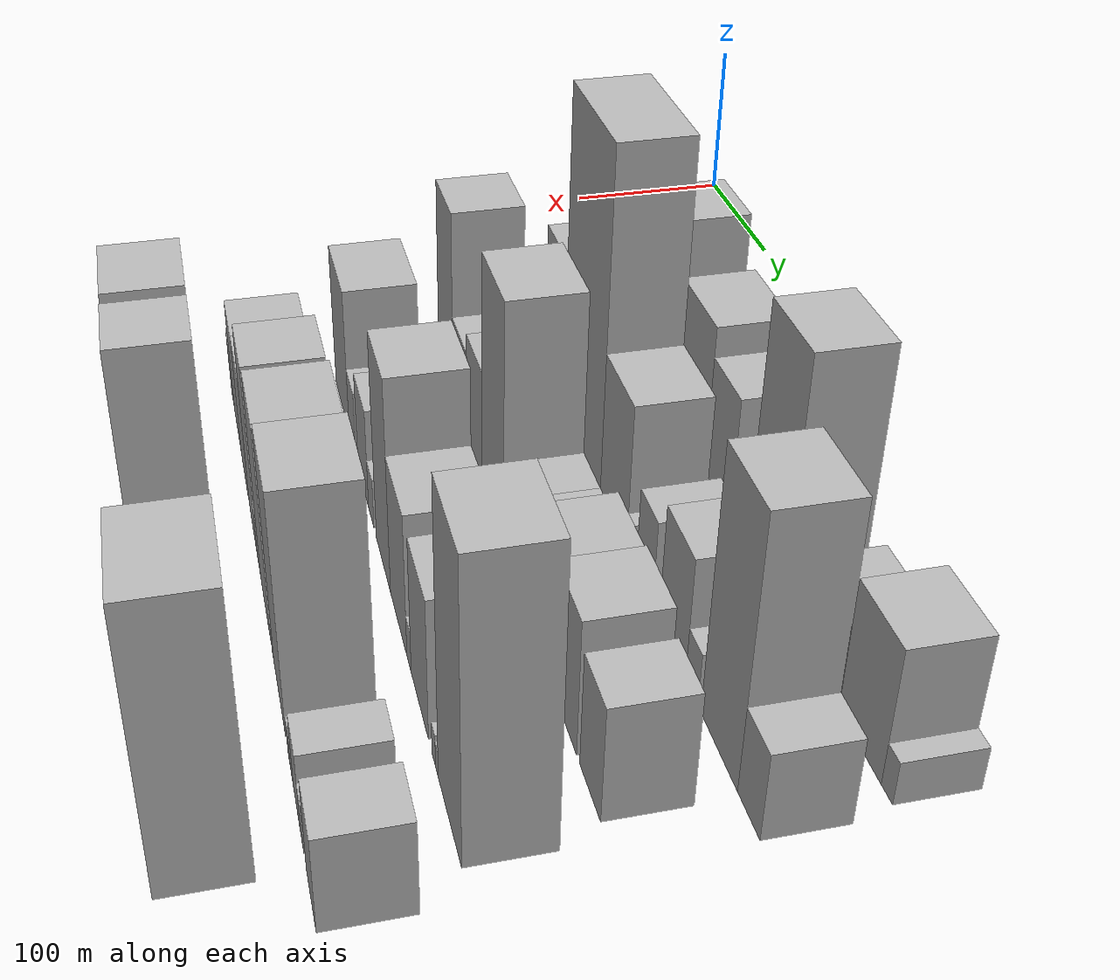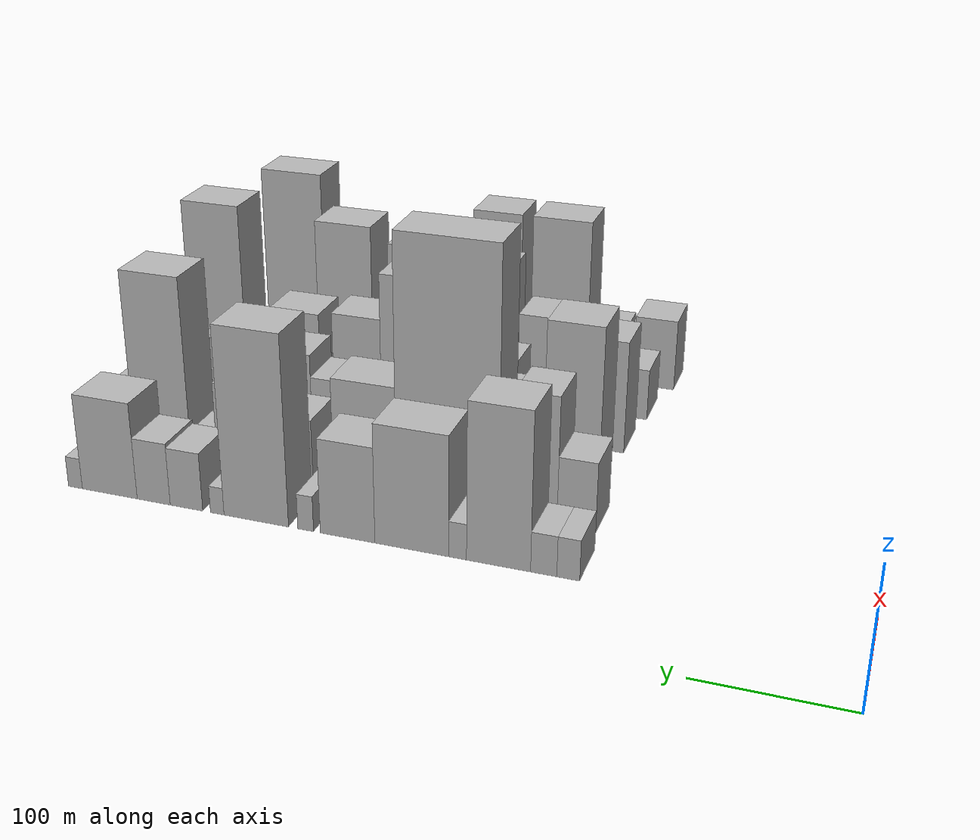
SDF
<sdf version="1.6">
 <world name="default">
  <model name="building_38">
   <static>1</static>
   <pose>100.0000 192.2269 0 0.000000 0.000000 0.000000</pose>
   <link name="link">
    <pose>0 0 15.00 0 0 0</pose>
    <collision name="collision"><geometry><box><size>40.0000 15.2988 30.0000</size></box></geometry></collision>
    <visual name="visual">
     <cast_shadows>0</cast_shadows>
     <geometry><box><size>40.0000 15.2988 30.0000</size></box></geometry>
     <material>
      <script>
       <uri>model://HANNAS_wall/materials/scripts</uri>
       <uri>model://HANNAS_wall/materials/textures</uri>
       <name>vrc/HANNAS_wall</name>
      </script>
     </material>
    </visual>
   </link>
  </model>
  <model name="building_39">
   <static>1</static>
   <pose>100.0000 208.6810 0 0.000000 0.000000 0.000000</pose>
   <link name="link">
    <pose>0 0 15.00 0 0 0</pose>
    <collision name="collision"><geometry><box><size>40.0000 17.6095 30.0000</size></box></geometry></collision>
    <visual name="visual">
     <cast_shadows>0</cast_shadows>
     <geometry><box><size>40.0000 17.6095 30.0000</size></box></geometry>
     <material>
      <script>
       <uri>model://HANNAS_wall/materials/scripts</uri>
       <uri>model://HANNAS_wall/materials/textures</uri>
       <name>vrc/HANNAS_wall</name>
      </script>
     </material>
    </visual>
   </link>
  </model>
  <model name="building_40">
   <static>1</static>
   <pose>100.0000 239.4291 0 0.000000 0.000000 0.000000</pose>
   <link name="link">
    <pose>0 0 58.50 0 0 0</pose>
    <collision name="collision"><geometry><box><size>40.0000 43.8867 117.0000</size></box></geometry></collision>
    <visual name="visual">
     <cast_shadows>0</cast_shadows>
     <geometry><box><size>40.0000 43.8867 117.0000</size></box></geometry>
     <material>
      <script>
       <uri>model://HANNAS_wall/materials/scripts</uri>
       <uri>model://HANNAS_wall/materials/textures</uri>
       <name>vrc/HANNAS_wall</name>
      </script>
     </material>
    </visual>
   </link>
  </model>
  <model name="building_41">
   <static>1</static>
   <pose>100.0000 267.4837 0 0.000000 0.000000 0.000000</pose>
   <link name="link">
    <pose>0 0 13.50 0 0 0</pose>
    <collision name="collision"><geometry><box><size>40.0000 12.2225 27.0000</size></box></geometry></collision>
    <visual name="visual">
     <cast_shadows>0</cast_shadows>
     <geometry><box><size>40.0000 12.2225 27.0000</size></box></geometry>
     <material>
      <script>
       <uri>model://HANNAS_wall/materials/scripts</uri>
       <uri>model://HANNAS_wall/materials/textures</uri>
       <name>vrc/HANNAS_wall</name>
      </script>
     </material>
    </visual>
   </link>
  </model>
  <model name="building_42">
   <static>1</static>
   <pose>100.0000 299.8959 0 0.000000 0.000000 0.000000</pose>
   <link name="link">
    <pose>0 0 45.00 0 0 0</pose>
    <collision name="collision"><geometry><box><size>40.0000 52.6018 90.0000</size></box></geometry></collision>
    <visual name="visual">
     <cast_shadows>0</cast_shadows>
     <geometry><box><size>40.0000 52.6018 90.0000</size></box></geometry>
     <material>
      <script>
       <uri>model://HANNAS_wall/materials/scripts</uri>
       <uri>model://HANNAS_wall/materials/textures</uri>
       <name>vrc/HANNAS_wall</name>
      </script>
     </material>
    </visual>
   </link>
  </model>
  <model name="building_43">
   <static>1</static>
   <pose>100.0000 346.1152 0 0.000000 0.000000 0.000000</pose>
   <link name="link">
    <pose>0 0 36.00 0 0 0</pose>
    <collision name="collision"><geometry><box><size>40.0000 39.8369 72.0000</size></box></geometry></collision>
    <visual name="visual">
     <cast_shadows>0</cast_shadows>
     <geometry><box><size>40.0000 39.8369 72.0000</size></box></geometry>
     <material>
      <script>
       <uri>model://HANNAS_wall/materials/scripts</uri>
       <uri>model://HANNAS_wall/materials/textures</uri>
       <name>vrc/HANNAS_wall</name>
      </script>
     </material>
    </visual>
   </link>
  </model>
  <model name="building_44">
   <static>1</static>
   <pose>100.0000 376.8552 0 0.000000 0.000000 0.000000</pose>
   <link name="link">
    <pose>0 0 13.50 0 0 0</pose>
    <collision name="collision"><geometry><box><size>40.0000 11.6431 27.0000</size></box></geometry></collision>
    <visual name="visual">
     <cast_shadows>0</cast_shadows>
     <geometry><box><size>40.0000 11.6431 27.0000</size></box></geometry>
     <material>
      <script>
       <uri>model://HANNAS_wall/materials/scripts</uri>
       <uri>model://HANNAS_wall/materials/textures</uri>
       <name>vrc/HANNAS_wall</name>
      </script>
     </material>
    </visual>
   </link>
  </model>
  <model name="building_45">
   <static>1</static>
   <pose>100.0000 414.1747 0 0.000000 0.000000 0.000000</pose>
   <link name="link">
    <pose>0 0 72.00 0 0 0</pose>
    <collision name="collision"><geometry><box><size>40.0000 48.9959 144.0000</size></box></geometry></collision>
    <visual name="visual">
     <cast_shadows>0</cast_shadows>
     <geometry><box><size>40.0000 48.9959 144.0000</size></box></geometry>
     <material>
      <script>
       <uri>model://HANNAS_wall/materials/scripts</uri>
       <uri>model://HANNAS_wall/materials/textures</uri>
       <name>vrc/HANNAS_wall</name>
      </script>
     </material>
    </visual>
   </link>
  </model>
  <model name="building_46">
   <static>1</static>
   <pose>100.0000 443.8975 0 0.000000 0.000000 0.000000</pose>
   <link name="link">
    <pose>0 0 10.50 0 0 0</pose>
    <collision name="collision"><geometry><box><size>40.0000 10.4497 21.0000</size></box></geometry></collision>
    <visual name="visual">
     <cast_shadows>0</cast_shadows>
     <geometry><box><size>40.0000 10.4497 21.0000</size></box></geometry>
     <material>
      <script>
       <uri>model://HANNAS_wall/materials/scripts</uri>
       <uri>model://HANNAS_wall/materials/textures</uri>
       <name>vrc/HANNAS_wall</name>
      </script>
     </material>
    </visual>
   </link>
  </model>
  <model name="building_47">
   <static>1</static>
   <pose>100.0000 467.8618 0 0.000000 0.000000 0.000000</pose>
   <link name="link">
    <pose>0 0 22.50 0 0 0</pose>
    <collision name="collision"><geometry><box><size>40.0000 25.4788 45.0000</size></box></geometry></collision>
    <visual name="visual">
     <cast_shadows>0</cast_shadows>
     <geometry><box><size>40.0000 25.4788 45.0000</size></box></geometry>
     <material>
      <script>
       <uri>model://HANNAS_wall/materials/scripts</uri>
       <uri>model://HANNAS_wall/materials/textures</uri>
       <name>vrc/HANNAS_wall</name>
      </script>
     </material>
    </visual>
   </link>
  </model>
  <model name="building_48">
   <static>1</static>
   <pose>100.0000 493.7250 0 0.000000 0.000000 0.000000</pose>
   <link name="link">
    <pose>0 0 24.00 0 0 0</pose>
    <collision name="collision"><geometry><box><size>40.0000 26.2477 48.0000</size></box></geometry></collision>
    <visual name="visual">
     <cast_shadows>0</cast_shadows>
     <geometry><box><size>40.0000 26.2477 48.0000</size></box></geometry>
     <material>
      <script>
       <uri>model://HANNAS_wall/materials/scripts</uri>
       <uri>model://HANNAS_wall/materials/textures</uri>
       <name>vrc/HANNAS_wall</name>
      </script>
     </material>
    </visual>
   </link>
  </model>
  <model name="building_49">
   <static>1</static>
   <pose>100.0000 529.0717 0 0.000000 0.000000 0.000000</pose>
   <link name="link">
    <pose>0 0 37.50 0 0 0</pose>
    <collision name="collision"><geometry><box><size>40.0000 44.4456 75.0000</size></box></geometry></collision>
    <visual name="visual">
     <cast_shadows>0</cast_shadows>
     <geometry><box><size>40.0000 44.4456 75.0000</size></box></geometry>
     <material>
      <script>
       <uri>model://HANNAS_wall/materials/scripts</uri>
       <uri>model://HANNAS_wall/materials/textures</uri>
       <name>vrc/HANNAS_wall</name>
      </script>
     </material>
    </visual>
   </link>
  </model>
  <model name="building_50">
   <static>1</static>
   <pose>100.0000 556.9595 0 0.000000 0.000000 0.000000</pose>
   <link name="link">
    <pose>0 0 12.00 0 0 0</pose>
    <collision name="collision"><geometry><box><size>40.0000 11.3300 24.0000</size></box></geometry></collision>
    <visual name="visual">
     <cast_shadows>0</cast_shadows>
     <geometry><box><size>40.0000 11.3300 24.0000</size></box></geometry>
     <material>
      <script>
       <uri>model://HANNAS_wall/materials/scripts</uri>
       <uri>model://HANNAS_wall/materials/textures</uri>
       <name>vrc/HANNAS_wall</name>
      </script>
     </material>
    </visual>
   </link>
  </model>
  <model name="building_98">
   <static>1</static>
   <pose>160.0000 202.7321 0 0.000000 0.000000 0.000000</pose>
   <link name="link">
    <pose>0 0 27.00 0 0 0</pose>
    <collision name="collision"><geometry><box><size>40.0000 27.2158 54.0000</size></box></geometry></collision>
    <visual name="visual">
     <cast_shadows>0</cast_shadows>
     <geometry><box><size>40.0000 27.2158 54.0000</size></box></geometry>
     <material>
      <script>
       <uri>model://HANNAS_wall/materials/scripts</uri>
       <uri>model://HANNAS_wall/materials/textures</uri>
       <name>vrc/HANNAS_wall</name>
      </script>
     </material>
    </visual>
   </link>
  </model>
  <model name="building_99">
   <static>1</static>
   <pose>160.0000 232.1119 0 0.000000 0.000000 0.000000</pose>
   <link name="link">
    <pose>0 0 49.50 0 0 0</pose>
    <collision name="collision"><geometry><box><size>40.0000 31.5439 99.0000</size></box></geometry></collision>
    <visual name="visual">
     <cast_shadows>0</cast_shadows>
     <geometry><box><size>40.0000 31.5439 99.0000</size></box></geometry>
     <material>
      <script>
       <uri>model://HANNAS_wall/materials/scripts</uri>
       <uri>model://HANNAS_wall/materials/textures</uri>
       <name>vrc/HANNAS_wall</name>
      </script>
     </material>
    </visual>
   </link>
  </model>
  <model name="building_100">
   <static>1</static>
   <pose>160.0000 252.9426 0 0.000000 0.000000 0.000000</pose>
   <link name="link">
    <pose>0 0 10.50 0 0 0</pose>
    <collision name="collision"><geometry><box><size>40.0000 10.1175 21.0000</size></box></geometry></collision>
    <visual name="visual">
     <cast_shadows>0</cast_shadows>
     <geometry><box><size>40.0000 10.1175 21.0000</size></box></geometry>
     <material>
      <script>
       <uri>model://HANNAS_wall/materials/scripts</uri>
       <uri>model://HANNAS_wall/materials/textures</uri>
       <name>vrc/HANNAS_wall</name>
      </script>
     </material>
    </visual>
   </link>
  </model>
  <model name="building_101">
   <static>1</static>
   <pose>160.0000 295.8715 0 0.000000 0.000000 0.000000</pose>
   <link name="link">
    <pose>0 0 100.50 0 0 0</pose>
    <collision name="collision"><geometry><box><size>40.0000 75.7402 201.0000</size></box></geometry></collision>
    <visual name="visual">
     <cast_shadows>0</cast_shadows>
     <geometry><box><size>40.0000 75.7402 201.0000</size></box></geometry>
     <material>
      <script>
       <uri>model://HANNAS_wall/materials/scripts</uri>
       <uri>model://HANNAS_wall/materials/textures</uri>
       <name>vrc/HANNAS_wall</name>
      </script>
     </material>
    </visual>
   </link>
  </model>
  <model name="building_102">
   <static>1</static>
   <pose>160.0000 357.6443 0 0.000000 0.000000 0.000000</pose>
   <link name="link">
    <pose>0 0 43.50 0 0 0</pose>
    <collision name="collision"><geometry><box><size>40.0000 47.8055 87.0000</size></box></geometry></collision>
    <visual name="visual">
     <cast_shadows>0</cast_shadows>
     <geometry><box><size>40.0000 47.8055 87.0000</size></box></geometry>
     <material>
      <script>
       <uri>model://HANNAS_wall/materials/scripts</uri>
       <uri>model://HANNAS_wall/materials/textures</uri>
       <name>vrc/HANNAS_wall</name>
      </script>
     </material>
    </visual>
   </link>
  </model>
  <model name="building_103">
   <static>1</static>
   <pose>160.0000 386.6813 0 0.000000 0.000000 0.000000</pose>
   <link name="link">
    <pose>0 0 12.00 0 0 0</pose>
    <collision name="collision"><geometry><box><size>40.0000 10.2686 24.0000</size></box></geometry></collision>
    <visual name="visual">
     <cast_shadows>0</cast_shadows>
     <geometry><box><size>40.0000 10.2686 24.0000</size></box></geometry>
     <material>
      <script>
       <uri>model://HANNAS_wall/materials/scripts</uri>
       <uri>model://HANNAS_wall/materials/textures</uri>
       <name>vrc/HANNAS_wall</name>
      </script>
     </material>
    </visual>
   </link>
  </model>
  <model name="building_104">
   <static>1</static>
   <pose>160.0000 411.3261 0 0.000000 0.000000 0.000000</pose>
   <link name="link">
    <pose>0 0 25.50 0 0 0</pose>
    <collision name="collision"><geometry><box><size>40.0000 27.0209 51.0000</size></box></geometry></collision>
    <visual name="visual">
     <cast_shadows>0</cast_shadows>
     <geometry><box><size>40.0000 27.0209 51.0000</size></box></geometry>
     <material>
      <script>
       <uri>model://HANNAS_wall/materials/scripts</uri>
       <uri>model://HANNAS_wall/materials/textures</uri>
       <name>vrc/HANNAS_wall</name>
      </script>
     </material>
    </visual>
   </link>
  </model>
  <model name="building_105">
   <static>1</static>
   <pose>160.0000 454.3801 0 0.000000 0.000000 0.000000</pose>
   <link name="link">
    <pose>0 0 34.50 0 0 0</pose>
    <collision name="collision"><geometry><box><size>40.0000 39.0872 69.0000</size></box></geometry></collision>
    <visual name="visual">
     <cast_shadows>0</cast_shadows>
     <geometry><box><size>40.0000 39.0872 69.0000</size></box></geometry>
     <material>
      <script>
       <uri>model://HANNAS_wall/materials/scripts</uri>
       <uri>model://HANNAS_wall/materials/textures</uri>
       <name>vrc/HANNAS_wall</name>
      </script>
     </material>
    </visual>
   </link>
  </model>
  <model name="building_106">
   <static>1</static>
   <pose>160.0000 482.6598 0 0.000000 0.000000 0.000000</pose>
   <link name="link">
    <pose>0 0 15.00 0 0 0</pose>
    <collision name="collision"><geometry><box><size>40.0000 17.4721 30.0000</size></box></geometry></collision>
    <visual name="visual">
     <cast_shadows>0</cast_shadows>
     <geometry><box><size>40.0000 17.4721 30.0000</size></box></geometry>
     <material>
      <script>
       <uri>model://HANNAS_wall/materials/scripts</uri>
       <uri>model://HANNAS_wall/materials/textures</uri>
       <name>vrc/HANNAS_wall</name>
      </script>
     </material>
    </visual>
   </link>
  </model>
  <model name="building_107">
   <static>1</static>
   <pose>160.0000 518.7461 0 0.000000 0.000000 0.000000</pose>
   <link name="link">
    <pose>0 0 73.50 0 0 0</pose>
    <collision name="collision"><geometry><box><size>40.0000 46.7004 147.0000</size></box></geometry></collision>
    <visual name="visual">
     <cast_shadows>0</cast_shadows>
     <geometry><box><size>40.0000 46.7004 147.0000</size></box></geometry>
     <material>
      <script>
       <uri>model://HANNAS_wall/materials/scripts</uri>
       <uri>model://HANNAS_wall/materials/textures</uri>
       <name>vrc/HANNAS_wall</name>
      </script>
     </material>
    </visual>
   </link>
  </model>
  <model name="building_108">
   <static>1</static>
   <pose>160.0000 555.2822 0 0.000000 0.000000 0.000000</pose>
   <link name="link">
    <pose>0 0 24.00 0 0 0</pose>
    <collision name="collision"><geometry><box><size>40.0000 26.3719 48.0000</size></box></geometry></collision>
    <visual name="visual">
     <cast_shadows>0</cast_shadows>
     <geometry><box><size>40.0000 26.3719 48.0000</size></box></geometry>
     <material>
      <script>
       <uri>model://HANNAS_wall/materials/scripts</uri>
       <uri>model://HANNAS_wall/materials/textures</uri>
       <name>vrc/HANNAS_wall</name>
      </script>
     </material>
    </visual>
   </link>
  </model>
  <model name="building_155">
   <static>1</static>
   <pose>220.0000 222.5188 0 0.000000 0.000000 0.000000</pose>
   <link name="link">
    <pose>0 0 63.00 0 0 0</pose>
    <collision name="collision"><geometry><box><size>40.0000 41.3851 126.0000</size></box></geometry></collision>
    <visual name="visual">
     <cast_shadows>0</cast_shadows>
     <geometry><box><size>40.0000 41.3851 126.0000</size></box></geometry>
     <material>
      <script>
       <uri>model://HANNAS_wall/materials/scripts</uri>
       <uri>model://HANNAS_wall/materials/textures</uri>
       <name>vrc/HANNAS_wall</name>
      </script>
     </material>
    </visual>
   </link>
  </model>
  <model name="building_156">
   <static>1</static>
   <pose>220.0000 260.6230 0 0.000000 0.000000 0.000000</pose>
   <link name="link">
    <pose>0 0 31.50 0 0 0</pose>
    <collision name="collision"><geometry><box><size>40.0000 34.8233 63.0000</size></box></geometry></collision>
    <visual name="visual">
     <cast_shadows>0</cast_shadows>
     <geometry><box><size>40.0000 34.8233 63.0000</size></box></geometry>
     <material>
      <script>
       <uri>model://HANNAS_wall/materials/scripts</uri>
       <uri>model://HANNAS_wall/materials/textures</uri>
       <name>vrc/HANNAS_wall</name>
      </script>
     </material>
    </visual>
   </link>
  </model>
  <model name="building_157">
   <static>1</static>
   <pose>220.0000 299.9080 0 0.000000 0.000000 0.000000</pose>
   <link name="link">
    <pose>0 0 37.50 0 0 0</pose>
    <collision name="collision"><geometry><box><size>40.0000 37.7466 75.0000</size></box></geometry></collision>
    <visual name="visual">
     <cast_shadows>0</cast_shadows>
     <geometry><box><size>40.0000 37.7466 75.0000</size></box></geometry>
     <material>
      <script>
       <uri>model://HANNAS_wall/materials/scripts</uri>
       <uri>model://HANNAS_wall/materials/textures</uri>
       <name>vrc/HANNAS_wall</name>
      </script>
     </material>
    </visual>
   </link>
  </model>
  <model name="building_158">
   <static>1</static>
   <pose>220.0000 343.2757 0 0.000000 0.000000 0.000000</pose>
   <link name="link">
    <pose>0 0 72.00 0 0 0</pose>
    <collision name="collision"><geometry><box><size>40.0000 48.9888 144.0000</size></box></geometry></collision>
    <visual name="visual">
     <cast_shadows>0</cast_shadows>
     <geometry><box><size>40.0000 48.9888 144.0000</size></box></geometry>
     <material>
      <script>
       <uri>model://HANNAS_wall/materials/scripts</uri>
       <uri>model://HANNAS_wall/materials/textures</uri>
       <name>vrc/HANNAS_wall</name>
      </script>
     </material>
    </visual>
   </link>
  </model>
  <model name="building_159">
   <static>1</static>
   <pose>220.0000 382.2747 0 0.000000 0.000000 0.000000</pose>
   <link name="link">
    <pose>0 0 27.00 0 0 0</pose>
    <collision name="collision"><geometry><box><size>40.0000 29.0091 54.0000</size></box></geometry></collision>
    <visual name="visual">
     <cast_shadows>0</cast_shadows>
     <geometry><box><size>40.0000 29.0091 54.0000</size></box></geometry>
     <material>
      <script>
       <uri>model://HANNAS_wall/materials/scripts</uri>
       <uri>model://HANNAS_wall/materials/textures</uri>
       <name>vrc/HANNAS_wall</name>
      </script>
     </material>
    </visual>
   </link>
  </model>
  <model name="building_160">
   <static>1</static>
   <pose>220.0000 410.6092 0 0.000000 0.000000 0.000000</pose>
   <link name="link">
    <pose>0 0 27.00 0 0 0</pose>
    <collision name="collision"><geometry><box><size>40.0000 27.6599 54.0000</size></box></geometry></collision>
    <visual name="visual">
     <cast_shadows>0</cast_shadows>
     <geometry><box><size>40.0000 27.6599 54.0000</size></box></geometry>
     <material>
      <script>
       <uri>model://HANNAS_wall/materials/scripts</uri>
       <uri>model://HANNAS_wall/materials/textures</uri>
       <name>vrc/HANNAS_wall</name>
      </script>
     </material>
    </visual>
   </link>
  </model>
  <model name="building_161">
   <static>1</static>
   <pose>220.0000 445.7305 0 0.000000 0.000000 0.000000</pose>
   <link name="link">
    <pose>0 0 36.00 0 0 0</pose>
    <collision name="collision"><geometry><box><size>40.0000 42.5827 72.0000</size></box></geometry></collision>
    <visual name="visual">
     <cast_shadows>0</cast_shadows>
     <geometry><box><size>40.0000 42.5827 72.0000</size></box></geometry>
     <material>
      <script>
       <uri>model://HANNAS_wall/materials/scripts</uri>
       <uri>model://HANNAS_wall/materials/textures</uri>
       <name>vrc/HANNAS_wall</name>
      </script>
     </material>
    </visual>
   </link>
  </model>
  <model name="building_162">
   <static>1</static>
   <pose>220.0000 487.4849 0 0.000000 0.000000 0.000000</pose>
   <link name="link">
    <pose>0 0 37.50 0 0 0</pose>
    <collision name="collision"><geometry><box><size>40.0000 40.9259 75.0000</size></box></geometry></collision>
    <visual name="visual">
     <cast_shadows>0</cast_shadows>
     <geometry><box><size>40.0000 40.9259 75.0000</size></box></geometry>
     <material>
      <script>
       <uri>model://HANNAS_wall/materials/scripts</uri>
       <uri>model://HANNAS_wall/materials/textures</uri>
       <name>vrc/HANNAS_wall</name>
      </script>
     </material>
    </visual>
   </link>
  </model>
  <model name="building_163">
   <static>1</static>
   <pose>220.0000 529.1925 0 0.000000 0.000000 0.000000</pose>
   <link name="link">
    <pose>0 0 31.50 0 0 0</pose>
    <collision name="collision"><geometry><box><size>40.0000 32.4893 63.0000</size></box></geometry></collision>
    <visual name="visual">
     <cast_shadows>0</cast_shadows>
     <geometry><box><size>40.0000 32.4893 63.0000</size></box></geometry>
     <material>
      <script>
       <uri>model://HANNAS_wall/materials/scripts</uri>
       <uri>model://HANNAS_wall/materials/textures</uri>
       <name>vrc/HANNAS_wall</name>
      </script>
     </material>
    </visual>
   </link>
  </model>
  <model name="building_205">
   <static>1</static>
   <pose>280.0000 223.7060 0 0.000000 0.000000 0.000000</pose>
   <link name="link">
    <pose>0 0 45.00 0 0 0</pose>
    <collision name="collision"><geometry><box><size>40.0000 52.5540 90.0000</size></box></geometry></collision>
    <visual name="visual">
     <cast_shadows>0</cast_shadows>
     <geometry><box><size>40.0000 52.5540 90.0000</size></box></geometry>
     <material>
      <script>
       <uri>model://HANNAS_wall/materials/scripts</uri>
       <uri>model://HANNAS_wall/materials/textures</uri>
       <name>vrc/HANNAS_wall</name>
      </script>
     </material>
    </visual>
   </link>
  </model>
  <model name="building_206">
   <static>1</static>
   <pose>280.0000 262.3688 0 0.000000 0.000000 0.000000</pose>
   <link name="link">
    <pose>0 0 21.00 0 0 0</pose>
    <collision name="collision"><geometry><box><size>40.0000 24.7716 42.0000</size></box></geometry></collision>
    <visual name="visual">
     <cast_shadows>0</cast_shadows>
     <geometry><box><size>40.0000 24.7716 42.0000</size></box></geometry>
     <material>
      <script>
       <uri>model://HANNAS_wall/materials/scripts</uri>
       <uri>model://HANNAS_wall/materials/textures</uri>
       <name>vrc/HANNAS_wall</name>
      </script>
     </material>
    </visual>
   </link>
  </model>
  <model name="building_207">
   <static>1</static>
   <pose>280.0000 300.6788 0 0.000000 0.000000 0.000000</pose>
   <link name="link">
    <pose>0 0 30.00 0 0 0</pose>
    <collision name="collision"><geometry><box><size>40.0000 35.8485 60.0000</size></box></geometry></collision>
    <visual name="visual">
     <cast_shadows>0</cast_shadows>
     <geometry><box><size>40.0000 35.8485 60.0000</size></box></geometry>
     <material>
      <script>
       <uri>model://HANNAS_wall/materials/scripts</uri>
       <uri>model://HANNAS_wall/materials/textures</uri>
       <name>vrc/HANNAS_wall</name>
      </script>
     </material>
    </visual>
   </link>
  </model>
  <model name="building_208">
   <static>1</static>
   <pose>280.0000 327.3553 0 0.000000 0.000000 0.000000</pose>
   <link name="link">
    <pose>0 0 15.00 0 0 0</pose>
    <collision name="collision"><geometry><box><size>40.0000 17.5044 30.0000</size></box></geometry></collision>
    <visual name="visual">
     <cast_shadows>0</cast_shadows>
     <geometry><box><size>40.0000 17.5044 30.0000</size></box></geometry>
     <material>
      <script>
       <uri>model://HANNAS_wall/materials/scripts</uri>
       <uri>model://HANNAS_wall/materials/textures</uri>
       <name>vrc/HANNAS_wall</name>
      </script>
     </material>
    </visual>
   </link>
  </model>
  <model name="building_209">
   <static>1</static>
   <pose>280.0000 365.5450 0 0.000000 0.000000 0.000000</pose>
   <link name="link">
    <pose>0 0 61.50 0 0 0</pose>
    <collision name="collision"><geometry><box><size>40.0000 42.8751 123.0000</size></box></geometry></collision>
    <visual name="visual">
     <cast_shadows>0</cast_shadows>
     <geometry><box><size>40.0000 42.8751 123.0000</size></box></geometry>
     <material>
      <script>
       <uri>model://HANNAS_wall/materials/scripts</uri>
       <uri>model://HANNAS_wall/materials/textures</uri>
       <name>vrc/HANNAS_wall</name>
      </script>
     </material>
    </visual>
   </link>
  </model>
  <model name="building_210">
   <static>1</static>
   <pose>280.0000 409.5335 0 0.000000 0.000000 0.000000</pose>
   <link name="link">
    <pose>0 0 40.50 0 0 0</pose>
    <collision name="collision"><geometry><box><size>40.0000 45.1018 81.0000</size></box></geometry></collision>
    <visual name="visual">
     <cast_shadows>0</cast_shadows>
     <geometry><box><size>40.0000 45.1018 81.0000</size></box></geometry>
     <material>
      <script>
       <uri>model://HANNAS_wall/materials/scripts</uri>
       <uri>model://HANNAS_wall/materials/textures</uri>
       <name>vrc/HANNAS_wall</name>
      </script>
     </material>
    </visual>
   </link>
  </model>
  <model name="building_211">
   <static>1</static>
   <pose>280.0000 437.6753 0 0.000000 0.000000 0.000000</pose>
   <link name="link">
    <pose>0 0 12.00 0 0 0</pose>
    <collision name="collision"><geometry><box><size>40.0000 11.1819 24.0000</size></box></geometry></collision>
    <visual name="visual">
     <cast_shadows>0</cast_shadows>
     <geometry><box><size>40.0000 11.1819 24.0000</size></box></geometry>
     <material>
      <script>
       <uri>model://HANNAS_wall/materials/scripts</uri>
       <uri>model://HANNAS_wall/materials/textures</uri>
       <name>vrc/HANNAS_wall</name>
      </script>
     </material>
    </visual>
   </link>
  </model>
  <model name="building_212">
   <static>1</static>
   <pose>280.0000 464.2793 0 0.000000 0.000000 0.000000</pose>
   <link name="link">
    <pose>0 0 39.00 0 0 0</pose>
    <collision name="collision"><geometry><box><size>40.0000 42.0262 78.0000</size></box></geometry></collision>
    <visual name="visual">
     <cast_shadows>0</cast_shadows>
     <geometry><box><size>40.0000 42.0262 78.0000</size></box></geometry>
     <material>
      <script>
       <uri>model://HANNAS_wall/materials/scripts</uri>
       <uri>model://HANNAS_wall/materials/textures</uri>
       <name>vrc/HANNAS_wall</name>
      </script>
     </material>
    </visual>
   </link>
  </model>
  <model name="building_213">
   <static>1</static>
   <pose>280.0000 497.3693 0 0.000000 0.000000 0.000000</pose>
   <link name="link">
    <pose>0 0 9.00 0 0 0</pose>
    <collision name="collision"><geometry><box><size>40.0000 8.1538 18.0000</size></box></geometry></collision>
    <visual name="visual">
     <cast_shadows>0</cast_shadows>
     <geometry><box><size>40.0000 8.1538 18.0000</size></box></geometry>
     <material>
      <script>
       <uri>model://HANNAS_wall/materials/scripts</uri>
       <uri>model://HANNAS_wall/materials/textures</uri>
       <name>vrc/HANNAS_wall</name>
      </script>
     </material>
    </visual>
   </link>
  </model>
  <model name="building_214">
   <static>1</static>
   <pose>280.0000 504.5423 0 0.000000 0.000000 0.000000</pose>
   <link name="link">
    <pose>0 0 7.50 0 0 0</pose>
    <collision name="collision"><geometry><box><size>40.0000 6.1921 15.0000</size></box></geometry></collision>
    <visual name="visual">
     <cast_shadows>0</cast_shadows>
     <geometry><box><size>40.0000 6.1921 15.0000</size></box></geometry>
     <material>
      <script>
       <uri>model://HANNAS_wall/materials/scripts</uri>
       <uri>model://HANNAS_wall/materials/textures</uri>
       <name>vrc/HANNAS_wall</name>
      </script>
     </material>
    </visual>
   </link>
  </model>
  <model name="building_215">
   <static>1</static>
   <pose>280.0000 531.8913 0 0.000000 0.000000 0.000000</pose>
   <link name="link">
    <pose>0 0 79.50 0 0 0</pose>
    <collision name="collision"><geometry><box><size>40.0000 48.5058 159.0000</size></box></geometry></collision>
    <visual name="visual">
     <cast_shadows>0</cast_shadows>
     <geometry><box><size>40.0000 48.5058 159.0000</size></box></geometry>
     <material>
      <script>
       <uri>model://HANNAS_wall/materials/scripts</uri>
       <uri>model://HANNAS_wall/materials/textures</uri>
       <name>vrc/HANNAS_wall</name>
      </script>
     </material>
    </visual>
   </link>
  </model>
  <model name="building_260">
   <static>1</static>
   <pose>340.0000 203.4419 0 0.000000 0.000000 0.000000</pose>
   <link name="link">
    <pose>0 0 21.00 0 0 0</pose>
    <collision name="collision"><geometry><box><size>40.0000 21.1125 42.0000</size></box></geometry></collision>
    <visual name="visual">
     <cast_shadows>0</cast_shadows>
     <geometry><box><size>40.0000 21.1125 42.0000</size></box></geometry>
     <material>
      <script>
       <uri>model://HANNAS_wall/materials/scripts</uri>
       <uri>model://HANNAS_wall/materials/textures</uri>
       <name>vrc/HANNAS_wall</name>
      </script>
     </material>
    </visual>
   </link>
  </model>
  <model name="building_261">
   <static>1</static>
   <pose>340.0000 235.0548 0 0.000000 0.000000 0.000000</pose>
   <link name="link">
    <pose>0 0 36.00 0 0 0</pose>
    <collision name="collision"><geometry><box><size>40.0000 42.1133 72.0000</size></box></geometry></collision>
    <visual name="visual">
     <cast_shadows>0</cast_shadows>
     <geometry><box><size>40.0000 42.1133 72.0000</size></box></geometry>
     <material>
      <script>
       <uri>model://HANNAS_wall/materials/scripts</uri>
       <uri>model://HANNAS_wall/materials/textures</uri>
       <name>vrc/HANNAS_wall</name>
      </script>
     </material>
    </visual>
   </link>
  </model>
  <model name="building_262">
   <static>1</static>
   <pose>340.0000 277.2223 0 0.000000 0.000000 0.000000</pose>
   <link name="link">
    <pose>0 0 37.50 0 0 0</pose>
    <collision name="collision"><geometry><box><size>40.0000 42.2216 75.0000</size></box></geometry></collision>
    <visual name="visual">
     <cast_shadows>0</cast_shadows>
     <geometry><box><size>40.0000 42.2216 75.0000</size></box></geometry>
     <material>
      <script>
       <uri>model://HANNAS_wall/materials/scripts</uri>
       <uri>model://HANNAS_wall/materials/textures</uri>
       <name>vrc/HANNAS_wall</name>
      </script>
     </material>
    </visual>
   </link>
  </model>
  <model name="building_263">
   <static>1</static>
   <pose>340.0000 325.0627 0 0.000000 0.000000 0.000000</pose>
   <link name="link">
    <pose>0 0 55.50 0 0 0</pose>
    <collision name="collision"><geometry><box><size>40.0000 39.4593 111.0000</size></box></geometry></collision>
    <visual name="visual">
     <cast_shadows>0</cast_shadows>
     <geometry><box><size>40.0000 39.4593 111.0000</size></box></geometry>
     <material>
      <script>
       <uri>model://HANNAS_wall/materials/scripts</uri>
       <uri>model://HANNAS_wall/materials/textures</uri>
       <name>vrc/HANNAS_wall</name>
      </script>
     </material>
    </visual>
   </link>
  </model>
  <model name="building_264">
   <static>1</static>
   <pose>340.0000 353.2437 0 0.000000 0.000000 0.000000</pose>
   <link name="link">
    <pose>0 0 16.50 0 0 0</pose>
    <collision name="collision"><geometry><box><size>40.0000 16.9027 33.0000</size></box></geometry></collision>
    <visual name="visual">
     <cast_shadows>0</cast_shadows>
     <geometry><box><size>40.0000 16.9027 33.0000</size></box></geometry>
     <material>
      <script>
       <uri>model://HANNAS_wall/materials/scripts</uri>
       <uri>model://HANNAS_wall/materials/textures</uri>
       <name>vrc/HANNAS_wall</name>
      </script>
     </material>
    </visual>
   </link>
  </model>
  <model name="building_265">
   <static>1</static>
   <pose>340.0000 384.9023 0 0.000000 0.000000 0.000000</pose>
   <link name="link">
    <pose>0 0 60.00 0 0 0</pose>
    <collision name="collision"><geometry><box><size>40.0000 46.4146 120.0000</size></box></geometry></collision>
    <visual name="visual">
     <cast_shadows>0</cast_shadows>
     <geometry><box><size>40.0000 46.4146 120.0000</size></box></geometry>
     <material>
      <script>
       <uri>model://HANNAS_wall/materials/scripts</uri>
       <uri>model://HANNAS_wall/materials/textures</uri>
       <name>vrc/HANNAS_wall</name>
      </script>
     </material>
    </visual>
   </link>
  </model>
  <model name="building_266">
   <static>1</static>
   <pose>340.0000 418.8366 0 0.000000 0.000000 0.000000</pose>
   <link name="link">
    <pose>0 0 9.00 0 0 0</pose>
    <collision name="collision"><geometry><box><size>40.0000 7.4539 18.0000</size></box></geometry></collision>
    <visual name="visual">
     <cast_shadows>0</cast_shadows>
     <geometry><box><size>40.0000 7.4539 18.0000</size></box></geometry>
     <material>
      <script>
       <uri>model://HANNAS_wall/materials/scripts</uri>
       <uri>model://HANNAS_wall/materials/textures</uri>
       <name>vrc/HANNAS_wall</name>
      </script>
     </material>
    </visual>
   </link>
  </model>
  <model name="building_267">
   <static>1</static>
   <pose>340.0000 446.5873 0 0.000000 0.000000 0.000000</pose>
   <link name="link">
    <pose>0 0 66.00 0 0 0</pose>
    <collision name="collision"><geometry><box><size>40.0000 48.0474 132.0000</size></box></geometry></collision>
    <visual name="visual">
     <cast_shadows>0</cast_shadows>
     <geometry><box><size>40.0000 48.0474 132.0000</size></box></geometry>
     <material>
      <script>
       <uri>model://HANNAS_wall/materials/scripts</uri>
       <uri>model://HANNAS_wall/materials/textures</uri>
       <name>vrc/HANNAS_wall</name>
      </script>
     </material>
    </visual>
   </link>
  </model>
  <model name="building_268">
   <static>1</static>
   <pose>340.0000 484.0534 0 0.000000 0.000000 0.000000</pose>
   <link name="link">
    <pose>0 0 10.50 0 0 0</pose>
    <collision name="collision"><geometry><box><size>40.0000 8.8849 21.0000</size></box></geometry></collision>
    <visual name="visual">
     <cast_shadows>0</cast_shadows>
     <geometry><box><size>40.0000 8.8849 21.0000</size></box></geometry>
     <material>
      <script>
       <uri>model://HANNAS_wall/materials/scripts</uri>
       <uri>model://HANNAS_wall/materials/textures</uri>
       <name>vrc/HANNAS_wall</name>
      </script>
     </material>
    </visual>
   </link>
  </model>
  <model name="building_269">
   <static>1</static>
   <pose>340.0000 494.1247 0 0.000000 0.000000 0.000000</pose>
   <link name="link">
    <pose>0 0 12.00 0 0 0</pose>
    <collision name="collision"><geometry><box><size>40.0000 11.2576 24.0000</size></box></geometry></collision>
    <visual name="visual">
     <cast_shadows>0</cast_shadows>
     <geometry><box><size>40.0000 11.2576 24.0000</size></box></geometry>
     <material>
      <script>
       <uri>model://HANNAS_wall/materials/scripts</uri>
       <uri>model://HANNAS_wall/materials/textures</uri>
       <name>vrc/HANNAS_wall</name>
      </script>
     </material>
    </visual>
   </link>
  </model>
  <model name="building_270">
   <static>1</static>
   <pose>340.0000 511.5848 0 0.000000 0.000000 0.000000</pose>
   <link name="link">
    <pose>0 0 21.00 0 0 0</pose>
    <collision name="collision"><geometry><box><size>40.0000 23.6625 42.0000</size></box></geometry></collision>
    <visual name="visual">
     <cast_shadows>0</cast_shadows>
     <geometry><box><size>40.0000 23.6625 42.0000</size></box></geometry>
     <material>
      <script>
       <uri>model://HANNAS_wall/materials/scripts</uri>
       <uri>model://HANNAS_wall/materials/textures</uri>
       <name>vrc/HANNAS_wall</name>
      </script>
     </material>
    </visual>
   </link>
  </model>
  <model name="building_271">
   <static>1</static>
   <pose>340.0000 529.5821 0 0.000000 0.000000 0.000000</pose>
   <link name="link">
    <pose>0 0 13.50 0 0 0</pose>
    <collision name="collision"><geometry><box><size>40.0000 12.3321 27.0000</size></box></geometry></collision>
    <visual name="visual">
     <cast_shadows>0</cast_shadows>
     <geometry><box><size>40.0000 12.3321 27.0000</size></box></geometry>
     <material>
      <script>
       <uri>model://HANNAS_wall/materials/scripts</uri>
       <uri>model://HANNAS_wall/materials/textures</uri>
       <name>vrc/HANNAS_wall</name>
      </script>
     </material>
    </visual>
   </link>
  </model>
  <model name="building_272">
   <static>1</static>
   <pose>340.0000 558.9728 0 0.000000 0.000000 0.000000</pose>
   <link name="link">
    <pose>0 0 25.50 0 0 0</pose>
    <collision name="collision"><geometry><box><size>40.0000 30.4494 51.0000</size></box></geometry></collision>
    <visual name="visual">
     <cast_shadows>0</cast_shadows>
     <geometry><box><size>40.0000 30.4494 51.0000</size></box></geometry>
     <material>
      <script>
       <uri>model://HANNAS_wall/materials/scripts</uri>
       <uri>model://HANNAS_wall/materials/textures</uri>
       <name>vrc/HANNAS_wall</name>
      </script>
     </material>
    </visual>
   </link>
  </model>
  <model name="building_318">
   <static>1</static>
   <pose>400.0000 200.6629 0 0.000000 0.000000 0.000000</pose>
   <link name="link">
    <pose>0 0 30.00 0 0 0</pose>
    <collision name="collision"><geometry><box><size>40.0000 33.9847 60.0000</size></box></geometry></collision>
    <visual name="visual">
     <cast_shadows>0</cast_shadows>
     <geometry><box><size>40.0000 33.9847 60.0000</size></box></geometry>
     <material>
      <script>
       <uri>model://HANNAS_wall/materials/scripts</uri>
       <uri>model://HANNAS_wall/materials/textures</uri>
       <name>vrc/HANNAS_wall</name>
      </script>
     </material>
    </visual>
   </link>
  </model>
  <model name="building_319">
   <static>1</static>
   <pose>400.0000 223.1475 0 0.000000 0.000000 0.000000</pose>
   <link name="link">
    <pose>0 0 13.50 0 0 0</pose>
    <collision name="collision"><geometry><box><size>40.0000 10.9845 27.0000</size></box></geometry></collision>
    <visual name="visual">
     <cast_shadows>0</cast_shadows>
     <geometry><box><size>40.0000 10.9845 27.0000</size></box></geometry>
     <material>
      <script>
       <uri>model://HANNAS_wall/materials/scripts</uri>
       <uri>model://HANNAS_wall/materials/textures</uri>
       <name>vrc/HANNAS_wall</name>
      </script>
     </material>
    </visual>
   </link>
  </model>
  <model name="building_320">
   <static>1</static>
   <pose>400.0000 243.7393 0 0.000000 0.000000 0.000000</pose>
   <link name="link">
    <pose>0 0 12.00 0 0 0</pose>
    <collision name="collision"><geometry><box><size>40.0000 10.1991 24.0000</size></box></geometry></collision>
    <visual name="visual">
     <cast_shadows>0</cast_shadows>
     <geometry><box><size>40.0000 10.1991 24.0000</size></box></geometry>
     <material>
      <script>
       <uri>model://HANNAS_wall/materials/scripts</uri>
       <uri>model://HANNAS_wall/materials/textures</uri>
       <name>vrc/HANNAS_wall</name>
      </script>
     </material>
    </visual>
   </link>
  </model>
  <model name="building_321">
   <static>1</static>
   <pose>400.0000 281.1532 0 0.000000 0.000000 0.000000</pose>
   <link name="link">
    <pose>0 0 67.50 0 0 0</pose>
    <collision name="collision"><geometry><box><size>40.0000 48.6287 135.0000</size></box></geometry></collision>
    <visual name="visual">
     <cast_shadows>0</cast_shadows>
     <geometry><box><size>40.0000 48.6287 135.0000</size></box></geometry>
     <material>
      <script>
       <uri>model://HANNAS_wall/materials/scripts</uri>
       <uri>model://HANNAS_wall/materials/textures</uri>
       <name>vrc/HANNAS_wall</name>
      </script>
     </material>
    </visual>
   </link>
  </model>
  <model name="building_322">
   <static>1</static>
   <pose>400.0000 335.2142 0 0.000000 0.000000 0.000000</pose>
   <link name="link">
    <pose>0 0 67.50 0 0 0</pose>
    <collision name="collision"><geometry><box><size>40.0000 41.4933 135.0000</size></box></geometry></collision>
    <visual name="visual">
     <cast_shadows>0</cast_shadows>
     <geometry><box><size>40.0000 41.4933 135.0000</size></box></geometry>
     <material>
      <script>
       <uri>model://HANNAS_wall/materials/scripts</uri>
       <uri>model://HANNAS_wall/materials/textures</uri>
       <name>vrc/HANNAS_wall</name>
      </script>
     </material>
    </visual>
   </link>
  </model>
  <model name="building_323">
   <static>1</static>
   <pose>400.0000 375.7844 0 0.000000 0.000000 0.000000</pose>
   <link name="link">
    <pose>0 0 21.00 0 0 0</pose>
    <collision name="collision"><geometry><box><size>40.0000 23.6471 42.0000</size></box></geometry></collision>
    <visual name="visual">
     <cast_shadows>0</cast_shadows>
     <geometry><box><size>40.0000 23.6471 42.0000</size></box></geometry>
     <material>
      <script>
       <uri>model://HANNAS_wall/materials/scripts</uri>
       <uri>model://HANNAS_wall/materials/textures</uri>
       <name>vrc/HANNAS_wall</name>
      </script>
     </material>
    </visual>
   </link>
  </model>
  <model name="building_324">
   <static>1</static>
   <pose>400.0000 398.1993 0 0.000000 0.000000 0.000000</pose>
   <link name="link">
    <pose>0 0 13.50 0 0 0</pose>
    <collision name="collision"><geometry><box><size>40.0000 11.1828 27.0000</size></box></geometry></collision>
    <visual name="visual">
     <cast_shadows>0</cast_shadows>
     <geometry><box><size>40.0000 11.1828 27.0000</size></box></geometry>
     <material>
      <script>
       <uri>model://HANNAS_wall/materials/scripts</uri>
       <uri>model://HANNAS_wall/materials/textures</uri>
       <name>vrc/HANNAS_wall</name>
      </script>
     </material>
    </visual>
   </link>
  </model>
  <model name="building_325">
   <static>1</static>
   <pose>400.0000 417.1352 0 0.000000 0.000000 0.000000</pose>
   <link name="link">
    <pose>0 0 10.50 0 0 0</pose>
    <collision name="collision"><geometry><box><size>40.0000 8.6891 21.0000</size></box></geometry></collision>
    <visual name="visual">
     <cast_shadows>0</cast_shadows>
     <geometry><box><size>40.0000 8.6891 21.0000</size></box></geometry>
     <material>
      <script>
       <uri>model://HANNAS_wall/materials/scripts</uri>
       <uri>model://HANNAS_wall/materials/textures</uri>
       <name>vrc/HANNAS_wall</name>
      </script>
     </material>
    </visual>
   </link>
  </model>
  <model name="building_326">
   <static>1</static>
   <pose>400.0000 442.4978 0 0.000000 0.000000 0.000000</pose>
   <link name="link">
    <pose>0 0 25.50 0 0 0</pose>
    <collision name="collision"><geometry><box><size>40.0000 30.0361 51.0000</size></box></geometry></collision>
    <visual name="visual">
     <cast_shadows>0</cast_shadows>
     <geometry><box><size>40.0000 30.0361 51.0000</size></box></geometry>
     <material>
      <script>
       <uri>model://HANNAS_wall/materials/scripts</uri>
       <uri>model://HANNAS_wall/materials/textures</uri>
       <name>vrc/HANNAS_wall</name>
      </script>
     </material>
    </visual>
   </link>
  </model>
  <model name="building_327">
   <static>1</static>
   <pose>400.0000 474.3056 0 0.000000 0.000000 0.000000</pose>
   <link name="link">
    <pose>0 0 28.50 0 0 0</pose>
    <collision name="collision"><geometry><box><size>40.0000 33.5795 57.0000</size></box></geometry></collision>
    <visual name="visual">
     <cast_shadows>0</cast_shadows>
     <geometry><box><size>40.0000 33.5795 57.0000</size></box></geometry>
     <material>
      <script>
       <uri>model://HANNAS_wall/materials/scripts</uri>
       <uri>model://HANNAS_wall/materials/textures</uri>
       <name>vrc/HANNAS_wall</name>
      </script>
     </material>
    </visual>
   </link>
  </model>
  <model name="building_328">
   <static>1</static>
   <pose>400.0000 518.2242 0 0.000000 0.000000 0.000000</pose>
   <link name="link">
    <pose>0 0 75.00 0 0 0</pose>
    <collision name="collision"><geometry><box><size>40.0000 54.2576 150.0000</size></box></geometry></collision>
    <visual name="visual">
     <cast_shadows>0</cast_shadows>
     <geometry><box><size>40.0000 54.2576 150.0000</size></box></geometry>
     <material>
      <script>
       <uri>model://HANNAS_wall/materials/scripts</uri>
       <uri>model://HANNAS_wall/materials/textures</uri>
       <name>vrc/HANNAS_wall</name>
      </script>
     </material>
    </visual>
   </link>
  </model>
 </world>
</sdf>
